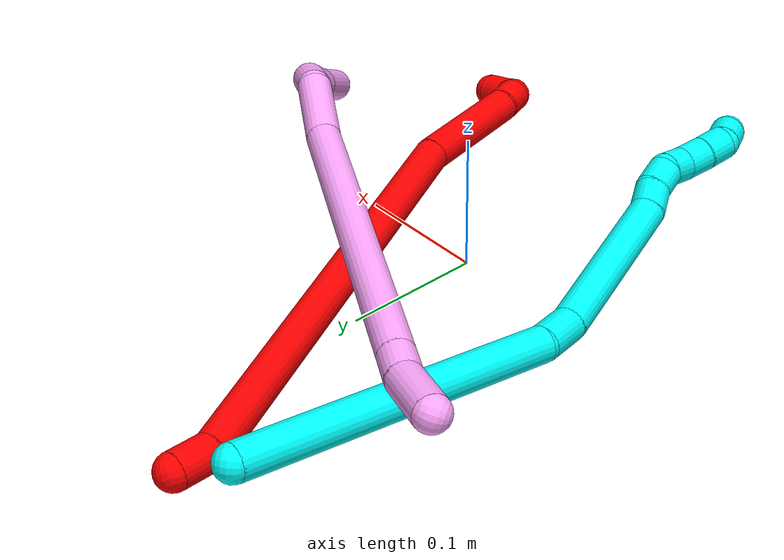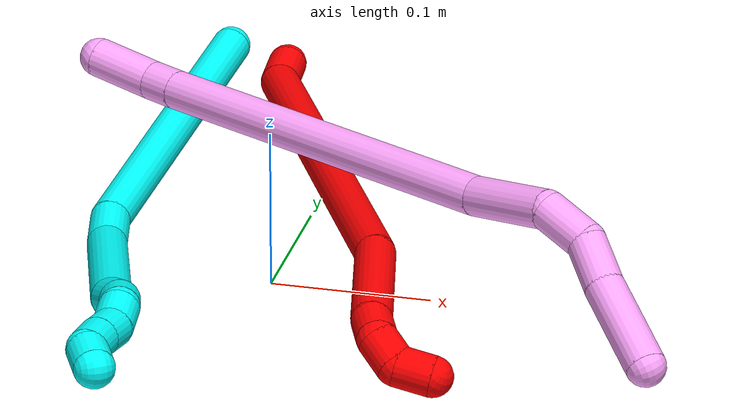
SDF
<sdf version="1.7">
 <world name="default">
  <model name="photoneo_s_sensor">
   <static>1</static>
   <pose>0 0 2 1.57079 1.57079 3.14159</pose>
   <link name="link">
    <inertial><mass>0.1</mass></inertial>
    <sensor name="sensor" type="depth">
     <update_rate>30</update_rate>
     <camera>
      <horizontal_fov>1.22</horizontal_fov>
      <image><width>1920</width><height>1200</height><format>B8G8R8</format></image>
      <clip><near>0.1</near><far>4</far></clip>
      <depth_camera><output>points</output></depth_camera>
     </camera>
     <plugin name="camera_plugin" filename="libgazebo_ros_depth_camera.so">
      <baseline>0.2</baseline>
      <alwaysOn>1</alwaysOn>
      <updateRate>0.0</updateRate>
      <cameraName>camera_ir</cameraName>
      <imageTopicName>/camera/color/image_raw</imageTopicName>
      <cameraInfoTopicName>/camera/color/camera_info</cameraInfoTopicName>
      <depthImageTopicName>/camera/depth/image_raw</depthImageTopicName>
      <depthImageCameraInfoTopicName>/camera/depth/camera_info</depthImageCameraInfoTopicName>
      <pointCloudTopicName>/camera/depth/points</pointCloudTopicName>
      <frameName>fr_optical</frameName>
      <pointCloudCutoff>0.1</pointCloudCutoff>
      <pointCloudCutoffMax>2.0</pointCloudCutoffMax>
      <distortionK1>0</distortionK1>
      <distortionK2>0</distortionK2>
      <distortionK3>0</distortionK3>
      <distortionT1>0</distortionT1>
      <distortionT2>0</distortionT2>
      <CxPrime>0</CxPrime>
      <Cx>0</Cx>
      <Cy>0</Cy>
      <focalLength>0</focalLength>
      <hackBaseline>0</hackBaseline>
     </plugin>
    </sensor>
   </link>
  </model>
  <model name="bin">
   <static>1</static>
   <link name="bottom">
    <collision name="collision-bottom">
     <pose>0 0 -0.01 0 -0 0</pose>
     <geometry><box><size>0.8 0.6 0.02</size></box></geometry>
     <surface>
      <friction><ode><mu>100</mu><mu2>100</mu2></ode></friction>
      <contact><collide_bitmask>65535</collide_bitmask></contact>
     </surface>
    </collision>
   </link>
   <link name="west_wall">
    <collision name="collision-west_wall">
     <pose>-0.41 0 0.1 0 -0 0</pose>
     <geometry><box><size>0.02 0.6 0.2</size></box></geometry>
     <surface>
      <friction><ode><mu>100</mu><mu2>100</mu2></ode></friction>
      <contact><collide_bitmask>65535</collide_bitmask></contact>
     </surface>
    </collision>
   </link>
   <link name="east_wall">
    <collision name="collision-east_wall">
     <pose>0.41 0 0.1 0 -0 0</pose>
     <geometry><box><size>0.02 0.6 0.2</size></box></geometry>
     <surface>
      <friction><ode><mu>100</mu><mu2>100</mu2></ode></friction>
      <contact><collide_bitmask>65535</collide_bitmask></contact>
     </surface>
    </collision>
   </link>
   <link name="south_wall">
    <collision name="collision-south_wall">
     <pose>0 -0.31 0.1 0 -0 0</pose>
     <geometry><box><size>0.8 0.02 0.2</size></box></geometry>
     <surface>
      <friction><ode><mu>100</mu><mu2>100</mu2></ode></friction>
      <contact><collide_bitmask>65535</collide_bitmask></contact>
     </surface>
    </collision>
   </link>
   <link name="north_wall">
    <collision name="collision-north_wall">
     <pose>0 0.31 0.1 0 -0 0</pose>
     <geometry><box><size>0.8 0.02 0.2</size></box></geometry>
     <surface>
      <friction><ode><mu>100</mu><mu2>100</mu2></ode></friction>
      <contact><collide_bitmask>65535</collide_bitmask></contact>
     </surface>
    </collision>
   </link>
  </model>
  <model name="2">
   <static>0</static>
   <link name="2">
    <collision name="collision-cylinder-e_1_1_4">
     <pose>0.006431 -0.011737 -0.002852 1.8092 0.489246 0.614965</pose>
     <geometry><cylinder><radius>0.0125</radius><length>0.027367</length></cylinder></geometry>
     <surface>
      <friction><ode><mu>1.16</mu><mu2>1.16</mu2><slip1>0</slip1><slip2>0</slip2></ode></friction>
      <contact><ode><kp>1e+06</kp><kd>1</kd><max_vel>0</max_vel><min_depth>0.001</min_depth></ode></contact>
     </surface>
    </collision>
    <visual name="visual-cylinder-e_1_1_4">
     <pose>0.006431 -0.011737 -0.002852 1.8092 0.489246 0.614965</pose>
     <geometry><cylinder><radius>0.0125</radius><length>0.027367</length></cylinder></geometry>
     <material><ambient>1 0 0 1</ambient></material>
    </visual>
    <collision name="collision-cylinder-e_2_4_5">
     <pose>0.050204 -0.154172 -0.0881 2.13328 0.237149 0.425338</pose>
     <geometry><cylinder><radius>0.0125</radius><length>0.317903</length></cylinder></geometry>
     <surface>
      <friction><ode><mu>1.16</mu><mu2>1.16</mu2><slip1>0</slip1><slip2>0</slip2></ode></friction>
      <contact><ode><kp>1e+06</kp><kd>1</kd><max_vel>0</max_vel><min_depth>0.001</min_depth></ode></contact>
     </surface>
    </collision>
    <visual name="visual-cylinder-e_2_4_5">
     <pose>0.050204 -0.154172 -0.0881 2.13328 0.237149 0.425338</pose>
     <geometry><cylinder><radius>0.0125</radius><length>0.317903</length></cylinder></geometry>
     <material><ambient>1 0 0 1</ambient></material>
    </visual>
    <collision name="collision-cylinder-e_3_5_6">
     <pose>0.104975 -0.323395 -0.1859 1.9512 0.397669 0.578477</pose>
     <geometry><cylinder><radius>0.0125</radius><length>0.090004</length></cylinder></geometry>
     <surface>
      <friction><ode><mu>1.16</mu><mu2>1.16</mu2><slip1>0</slip1><slip2>0</slip2></ode></friction>
      <contact><ode><kp>1e+06</kp><kd>1</kd><max_vel>0</max_vel><min_depth>0.001</min_depth></ode></contact>
     </surface>
    </collision>
    <visual name="visual-cylinder-e_3_5_6">
     <pose>0.104975 -0.323395 -0.1859 1.9512 0.397669 0.578477</pose>
     <geometry><cylinder><radius>0.0125</radius><length>0.090004</length></cylinder></geometry>
     <material><ambient>1 0 0 1</ambient></material>
    </visual>
    <collision name="collision-cylinder-e_4_6_7">
     <pose>0.124622 -0.371669 -0.205431 1.97112 0.206615 0.310385</pose>
     <geometry><cylinder><radius>0.0125</radius><length>0.021633</length></cylinder></geometry>
     <surface>
      <friction><ode><mu>1.16</mu><mu2>1.16</mu2><slip1>0</slip1><slip2>0</slip2></ode></friction>
      <contact><ode><kp>1e+06</kp><kd>1</kd><max_vel>0</max_vel><min_depth>0.001</min_depth></ode></contact>
     </surface>
    </collision>
    <visual name="visual-cylinder-e_4_6_7">
     <pose>0.124622 -0.371669 -0.205431 1.97112 0.206615 0.310385</pose>
     <geometry><cylinder><radius>0.0125</radius><length>0.021633</length></cylinder></geometry>
     <material><ambient>1 0 0 1</ambient></material>
    </visual>
    <collision name="collision-cylinder-e_5_7_8">
     <pose>0.122685 -0.390793 -0.211556 1.78101 -0.409078 -0.501929</pose>
     <geometry><cylinder><radius>0.0125</radius><length>0.020895</length></cylinder></geometry>
     <surface>
      <friction><ode><mu>1.16</mu><mu2>1.16</mu2><slip1>0</slip1><slip2>0</slip2></ode></friction>
      <contact><ode><kp>1e+06</kp><kd>1</kd><max_vel>0</max_vel><min_depth>0.001</min_depth></ode></contact>
     </surface>
    </collision>
    <visual name="visual-cylinder-e_5_7_8">
     <pose>0.122685 -0.390793 -0.211556 1.78101 -0.409078 -0.501929</pose>
     <geometry><cylinder><radius>0.0125</radius><length>0.020895</length></cylinder></geometry>
     <material><ambient>1 0 0 1</ambient></material>
    </visual>
    <collision name="collision-cylinder-e_6_8_2">
     <pose>0.109726 -0.404436 -0.218797 2.45806 -0.916044 -1.89149</pose>
     <geometry><cylinder><radius>0.0125</radius><length>0.022198</length></cylinder></geometry>
     <surface>
      <friction><ode><mu>1.16</mu><mu2>1.16</mu2><slip1>0</slip1><slip2>0</slip2></ode></friction>
      <contact><ode><kp>1e+06</kp><kd>1</kd><max_vel>0</max_vel><min_depth>0.001</min_depth></ode></contact>
     </surface>
    </collision>
    <visual name="visual-cylinder-e_6_8_2">
     <pose>0.109726 -0.404436 -0.218797 2.45806 -0.916044 -1.89149</pose>
     <geometry><cylinder><radius>0.0125</radius><length>0.022198</length></cylinder></geometry>
     <material><ambient>1 0 0 1</ambient></material>
    </visual>
    <collision name="collision-sphere-2">
     <pose>0.100922 -0.408704 -0.224038 0 -0 0</pose>
     <geometry><sphere><radius>0.0125</radius></sphere></geometry>
     <surface>
      <friction><ode><mu>1.16</mu><mu2>1.16</mu2><slip1>0</slip1><slip2>0</slip2></ode></friction>
      <contact><ode><kp>1e+06</kp><kd>1</kd><max_vel>0</max_vel><min_depth>0.001</min_depth></ode></contact>
     </surface>
    </collision>
    <visual name="visual-sphere-2">
     <pose>0.100922 -0.408704 -0.224038 0 -0 0</pose>
     <geometry><sphere><radius>0.0125</radius></sphere></geometry>
     <material><ambient>1 0 0 1</ambient></material>
    </visual>
    <collision name="collision-sphere-4">
     <pose>0.012861 -0.023473 -0.005705 0 -0 0</pose>
     <geometry><sphere><radius>0.0125</radius></sphere></geometry>
     <surface>
      <friction><ode><mu>1.16</mu><mu2>1.16</mu2><slip1>0</slip1><slip2>0</slip2></ode></friction>
      <contact><ode><kp>1e+06</kp><kd>1</kd><max_vel>0</max_vel><min_depth>0.001</min_depth></ode></contact>
     </surface>
    </collision>
    <visual name="visual-sphere-4">
     <pose>0.012861 -0.023473 -0.005705 0 -0 0</pose>
     <geometry><sphere><radius>0.0125</radius></sphere></geometry>
     <material><ambient>1 0 0 1</ambient></material>
    </visual>
    <collision name="collision-sphere-1">
     <geometry><sphere><radius>0.0125</radius></sphere></geometry>
     <surface>
      <friction><ode><mu>1.16</mu><mu2>1.16</mu2><slip1>0</slip1><slip2>0</slip2></ode></friction>
      <contact><ode><kp>1e+06</kp><kd>1</kd><max_vel>0</max_vel><min_depth>0.001</min_depth></ode></contact>
     </surface>
    </collision>
    <visual name="visual-sphere-1">
     <geometry><sphere><radius>0.0125</radius></sphere></geometry>
     <material><ambient>1 0 0 1</ambient></material>
    </visual>
    <collision name="collision-sphere-8">
     <pose>0.11853 -0.400167 -0.213557 0 -0 0</pose>
     <geometry><sphere><radius>0.0125</radius></sphere></geometry>
     <surface>
      <friction><ode><mu>1.16</mu><mu2>1.16</mu2><slip1>0</slip1><slip2>0</slip2></ode></friction>
      <contact><ode><kp>1e+06</kp><kd>1</kd><max_vel>0</max_vel><min_depth>0.001</min_depth></ode></contact>
     </surface>
    </collision>
    <visual name="visual-sphere-8">
     <pose>0.11853 -0.400167 -0.213557 0 -0 0</pose>
     <geometry><sphere><radius>0.0125</radius></sphere></geometry>
     <material><ambient>1 0 0 1</ambient></material>
    </visual>
    <collision name="collision-sphere-5">
     <pose>0.087547 -0.284871 -0.170495 0 -0 0</pose>
     <geometry><sphere><radius>0.0125</radius></sphere></geometry>
     <surface>
      <friction><ode><mu>1.16</mu><mu2>1.16</mu2><slip1>0</slip1><slip2>0</slip2></ode></friction>
      <contact><ode><kp>1e+06</kp><kd>1</kd><max_vel>0</max_vel><min_depth>0.001</min_depth></ode></contact>
     </surface>
    </collision>
    <visual name="visual-sphere-5">
     <pose>0.087547 -0.284871 -0.170495 0 -0 0</pose>
     <geometry><sphere><radius>0.0125</radius></sphere></geometry>
     <material><ambient>1 0 0 1</ambient></material>
    </visual>
    <collision name="collision-sphere-6">
     <pose>0.122403 -0.36192 -0.201305 0 -0 0</pose>
     <geometry><sphere><radius>0.0125</radius></sphere></geometry>
     <surface>
      <friction><ode><mu>1.16</mu><mu2>1.16</mu2><slip1>0</slip1><slip2>0</slip2></ode></friction>
      <contact><ode><kp>1e+06</kp><kd>1</kd><max_vel>0</max_vel><min_depth>0.001</min_depth></ode></contact>
     </surface>
    </collision>
    <visual name="visual-sphere-6">
     <pose>0.122403 -0.36192 -0.201305 0 -0 0</pose>
     <geometry><sphere><radius>0.0125</radius></sphere></geometry>
     <material><ambient>1 0 0 1</ambient></material>
    </visual>
    <collision name="collision-sphere-7">
     <pose>0.126841 -0.381418 -0.209556 0 -0 0</pose>
     <geometry><sphere><radius>0.0125</radius></sphere></geometry>
     <surface>
      <friction><ode><mu>1.16</mu><mu2>1.16</mu2><slip1>0</slip1><slip2>0</slip2></ode></friction>
      <contact><ode><kp>1e+06</kp><kd>1</kd><max_vel>0</max_vel><min_depth>0.001</min_depth></ode></contact>
     </surface>
    </collision>
    <visual name="visual-sphere-7">
     <pose>0.126841 -0.381418 -0.209556 0 -0 0</pose>
     <geometry><sphere><radius>0.0125</radius></sphere></geometry>
     <material><ambient>1 0 0 1</ambient></material>
    </visual>
    <inertial>
     <pose>0.066559 -0.207247 -0.117077 0 -0 0</pose>
     <mass>0.5</mass>
     <inertia>
      <ixx>0.003555</ixx>
      <ixy>0</ixy>
      <ixz>0</ixz>
      <iyy>-1.3e-05</iyy>
      <iyz>0</iyz>
      <izz>0.001599</izz>
     </inertia>
    </inertial>
   </link>
   <pose>-0.06228 0.282837 0.020864 2.54214 -0.476847 -2.47833</pose>
  </model>
  <model name="3">
   <static>0</static>
   <link name="3">
    <collision name="collision-cylinder-e_1_1_4">
     <pose>0.026574 -0.08248 -0.074107 2.30277 0.235225 0.518108</pose>
     <geometry><cylinder><radius>0.0125</radius><length>0.228045</length></cylinder></geometry>
     <surface>
      <friction><ode><mu>1.16</mu><mu2>1.16</mu2><slip1>0</slip1><slip2>0</slip2></ode></friction>
      <contact><ode><kp>1e+06</kp><kd>1</kd><max_vel>0</max_vel><min_depth>0.001</min_depth></ode></contact>
     </surface>
    </collision>
    <visual name="visual-cylinder-e_1_1_4">
     <pose>0.026574 -0.08248 -0.074107 2.30277 0.235225 0.518108</pose>
     <geometry><cylinder><radius>0.0125</radius><length>0.228045</length></cylinder></geometry>
     <material><ambient>0.003922 1 0.996078 1</ambient></material>
    </visual>
    <collision name="collision-cylinder-e_2_4_5">
     <pose>0.056954 -0.178649 -0.154583 2.00621 0.246947 0.384413</pose>
     <geometry><cylinder><radius>0.0125</radius><length>0.031138</length></cylinder></geometry>
     <surface>
      <friction><ode><mu>1.16</mu><mu2>1.16</mu2><slip1>0</slip1><slip2>0</slip2></ode></friction>
      <contact><ode><kp>1e+06</kp><kd>1</kd><max_vel>0</max_vel><min_depth>0.001</min_depth></ode></contact>
     </surface>
    </collision>
    <visual name="visual-cylinder-e_2_4_5">
     <pose>0.056954 -0.178649 -0.154583 2.00621 0.246947 0.384413</pose>
     <geometry><cylinder><radius>0.0125</radius><length>0.031138</length></cylinder></geometry>
     <material><ambient>0.003922 1 0.996078 1</ambient></material>
    </visual>
    <collision name="collision-cylinder-e_3_5_6">
     <pose>0.059302 -0.249378 -0.18064 1.90318 -0.024155 -0.03389</pose>
     <geometry><cylinder><radius>0.0125</radius><length>0.120723</length></cylinder></geometry>
     <surface>
      <friction><ode><mu>1.16</mu><mu2>1.16</mu2><slip1>0</slip1><slip2>0</slip2></ode></friction>
      <contact><ode><kp>1e+06</kp><kd>1</kd><max_vel>0</max_vel><min_depth>0.001</min_depth></ode></contact>
     </surface>
    </collision>
    <visual name="visual-cylinder-e_3_5_6">
     <pose>0.059302 -0.249378 -0.18064 1.90318 -0.024155 -0.03389</pose>
     <geometry><cylinder><radius>0.0125</radius><length>0.120723</length></cylinder></geometry>
     <material><ambient>0.003922 1 0.996078 1</ambient></material>
    </visual>
    <collision name="collision-cylinder-e_4_6_7">
     <pose>0.05579 -0.316175 -0.201187 1.65838 -0.206774 -0.225572</pose>
     <geometry><cylinder><radius>0.0125</radius><length>0.020012</length></cylinder></geometry>
     <surface>
      <friction><ode><mu>1.16</mu><mu2>1.16</mu2><slip1>0</slip1><slip2>0</slip2></ode></friction>
      <contact><ode><kp>1e+06</kp><kd>1</kd><max_vel>0</max_vel><min_depth>0.001</min_depth></ode></contact>
     </surface>
    </collision>
    <visual name="visual-cylinder-e_4_6_7">
     <pose>0.05579 -0.316175 -0.201187 1.65838 -0.206774 -0.225572</pose>
     <geometry><cylinder><radius>0.0125</radius><length>0.020012</length></cylinder></geometry>
     <material><ambient>0.003922 1 0.996078 1</ambient></material>
    </visual>
    <collision name="collision-cylinder-e_5_7_8">
     <pose>0.052641 -0.33525 -0.205594 1.93477 -0.109328 -0.158466</pose>
     <geometry><cylinder><radius>0.0125</radius><length>0.020065</length></cylinder></geometry>
     <surface>
      <friction><ode><mu>1.16</mu><mu2>1.16</mu2><slip1>0</slip1><slip2>0</slip2></ode></friction>
      <contact><ode><kp>1e+06</kp><kd>1</kd><max_vel>0</max_vel><min_depth>0.001</min_depth></ode></contact>
     </surface>
    </collision>
    <visual name="visual-cylinder-e_5_7_8">
     <pose>0.052641 -0.33525 -0.205594 1.93477 -0.109328 -0.158466</pose>
     <geometry><cylinder><radius>0.0125</radius><length>0.020065</length></cylinder></geometry>
     <material><ambient>0.003922 1 0.996078 1</ambient></material>
    </visual>
    <collision name="collision-cylinder-e_6_8_9">
     <pose>0.054701 -0.352488 -0.214386 2.15553 0.320679 0.584763</pose>
     <geometry><cylinder><radius>0.0125</radius><length>0.020012</length></cylinder></geometry>
     <surface>
      <friction><ode><mu>1.16</mu><mu2>1.16</mu2><slip1>0</slip1><slip2>0</slip2></ode></friction>
      <contact><ode><kp>1e+06</kp><kd>1</kd><max_vel>0</max_vel><min_depth>0.001</min_depth></ode></contact>
     </surface>
    </collision>
    <visual name="visual-cylinder-e_6_8_9">
     <pose>0.054701 -0.352488 -0.214386 2.15553 0.320679 0.584763</pose>
     <geometry><cylinder><radius>0.0125</radius><length>0.020012</length></cylinder></geometry>
     <material><ambient>0.003922 1 0.996078 1</ambient></material>
    </visual>
    <collision name="collision-cylinder-e_7_9_10">
     <pose>0.057927 -0.367545 -0.22663 2.34657 0.007277 0.017332</pose>
     <geometry><cylinder><radius>0.0125</radius><length>0.020002</length></cylinder></geometry>
     <surface>
      <friction><ode><mu>1.16</mu><mu2>1.16</mu2><slip1>0</slip1><slip2>0</slip2></ode></friction>
      <contact><ode><kp>1e+06</kp><kd>1</kd><max_vel>0</max_vel><min_depth>0.001</min_depth></ode></contact>
     </surface>
    </collision>
    <visual name="visual-cylinder-e_7_9_10">
     <pose>0.057927 -0.367545 -0.22663 2.34657 0.007277 0.017332</pose>
     <geometry><cylinder><radius>0.0125</radius><length>0.020002</length></cylinder></geometry>
     <material><ambient>0.003922 1 0.996078 1</ambient></material>
    </visual>
    <collision name="collision-cylinder-e_8_10_11">
     <pose>0.058417 -0.382371 -0.240017 2.26389 0.041642 0.088671</pose>
     <geometry><cylinder><radius>0.0125</radius><length>0.020001</length></cylinder></geometry>
     <surface>
      <friction><ode><mu>1.16</mu><mu2>1.16</mu2><slip1>0</slip1><slip2>0</slip2></ode></friction>
      <contact><ode><kp>1e+06</kp><kd>1</kd><max_vel>0</max_vel><min_depth>0.001</min_depth></ode></contact>
     </surface>
    </collision>
    <visual name="visual-cylinder-e_8_10_11">
     <pose>0.058417 -0.382371 -0.240017 2.26389 0.041642 0.088671</pose>
     <geometry><cylinder><radius>0.0125</radius><length>0.020001</length></cylinder></geometry>
     <material><ambient>0.003922 1 0.996078 1</ambient></material>
    </visual>
    <collision name="collision-cylinder-e_9_11_2">
     <pose>0.061499 -0.399589 -0.247837 1.72026 0.269821 0.312834</pose>
     <geometry><cylinder><radius>0.0125</radius><length>0.020001</length></cylinder></geometry>
     <surface>
      <friction><ode><mu>1.16</mu><mu2>1.16</mu2><slip1>0</slip1><slip2>0</slip2></ode></friction>
      <contact><ode><kp>1e+06</kp><kd>1</kd><max_vel>0</max_vel><min_depth>0.001</min_depth></ode></contact>
     </surface>
    </collision>
    <visual name="visual-cylinder-e_9_11_2">
     <pose>0.061499 -0.399589 -0.247837 1.72026 0.269821 0.312834</pose>
     <geometry><cylinder><radius>0.0125</radius><length>0.020001</length></cylinder></geometry>
     <material><ambient>0.003922 1 0.996078 1</ambient></material>
    </visual>
    <collision name="collision-sphere-2">
     <pose>0.064164 -0.40912 -0.249272 0 -0 0</pose>
     <geometry><sphere><radius>0.0125</radius></sphere></geometry>
     <surface>
      <friction><ode><mu>1.16</mu><mu2>1.16</mu2><slip1>0</slip1><slip2>0</slip2></ode></friction>
      <contact><ode><kp>1e+06</kp><kd>1</kd><max_vel>0</max_vel><min_depth>0.001</min_depth></ode></contact>
     </surface>
    </collision>
    <visual name="visual-sphere-2">
     <pose>0.064164 -0.40912 -0.249272 0 -0 0</pose>
     <geometry><sphere><radius>0.0125</radius></sphere></geometry>
     <material><ambient>0.003922 1 0.996078 1</ambient></material>
    </visual>
    <collision name="collision-sphere-11">
     <pose>0.058833 -0.390057 -0.246401 0 -0 0</pose>
     <geometry><sphere><radius>0.0125</radius></sphere></geometry>
     <surface>
      <friction><ode><mu>1.16</mu><mu2>1.16</mu2><slip1>0</slip1><slip2>0</slip2></ode></friction>
      <contact><ode><kp>1e+06</kp><kd>1</kd><max_vel>0</max_vel><min_depth>0.001</min_depth></ode></contact>
     </surface>
    </collision>
    <visual name="visual-sphere-11">
     <pose>0.058833 -0.390057 -0.246401 0 -0 0</pose>
     <geometry><sphere><radius>0.0125</radius></sphere></geometry>
     <material><ambient>0.003922 1 0.996078 1</ambient></material>
    </visual>
    <collision name="collision-sphere-10">
     <pose>0.058 -0.374685 -0.233633 0 -0 0</pose>
     <geometry><sphere><radius>0.0125</radius></sphere></geometry>
     <surface>
      <friction><ode><mu>1.16</mu><mu2>1.16</mu2><slip1>0</slip1><slip2>0</slip2></ode></friction>
      <contact><ode><kp>1e+06</kp><kd>1</kd><max_vel>0</max_vel><min_depth>0.001</min_depth></ode></contact>
     </surface>
    </collision>
    <visual name="visual-sphere-10">
     <pose>0.058 -0.374685 -0.233633 0 -0 0</pose>
     <geometry><sphere><radius>0.0125</radius></sphere></geometry>
     <material><ambient>0.003922 1 0.996078 1</ambient></material>
    </visual>
    <collision name="collision-sphere-9">
     <pose>0.057855 -0.360406 -0.219627 0 -0 0</pose>
     <geometry><sphere><radius>0.0125</radius></sphere></geometry>
     <surface>
      <friction><ode><mu>1.16</mu><mu2>1.16</mu2><slip1>0</slip1><slip2>0</slip2></ode></friction>
      <contact><ode><kp>1e+06</kp><kd>1</kd><max_vel>0</max_vel><min_depth>0.001</min_depth></ode></contact>
     </surface>
    </collision>
    <visual name="visual-sphere-9">
     <pose>0.057855 -0.360406 -0.219627 0 -0 0</pose>
     <geometry><sphere><radius>0.0125</radius></sphere></geometry>
     <material><ambient>0.003922 1 0.996078 1</ambient></material>
    </visual>
    <collision name="collision-sphere-4">
     <pose>0.053149 -0.164961 -0.148215 0 -0 0</pose>
     <geometry><sphere><radius>0.0125</radius></sphere></geometry>
     <surface>
      <friction><ode><mu>1.16</mu><mu2>1.16</mu2><slip1>0</slip1><slip2>0</slip2></ode></friction>
      <contact><ode><kp>1e+06</kp><kd>1</kd><max_vel>0</max_vel><min_depth>0.001</min_depth></ode></contact>
     </surface>
    </collision>
    <visual name="visual-sphere-4">
     <pose>0.053149 -0.164961 -0.148215 0 -0 0</pose>
     <geometry><sphere><radius>0.0125</radius></sphere></geometry>
     <material><ambient>0.003922 1 0.996078 1</ambient></material>
    </visual>
    <collision name="collision-sphere-1">
     <geometry><sphere><radius>0.0125</radius></sphere></geometry>
     <surface>
      <friction><ode><mu>1.16</mu><mu2>1.16</mu2><slip1>0</slip1><slip2>0</slip2></ode></friction>
      <contact><ode><kp>1e+06</kp><kd>1</kd><max_vel>0</max_vel><min_depth>0.001</min_depth></ode></contact>
     </surface>
    </collision>
    <visual name="visual-sphere-1">
     <geometry><sphere><radius>0.0125</radius></sphere></geometry>
     <material><ambient>0.003922 1 0.996078 1</ambient></material>
    </visual>
    <collision name="collision-sphere-8">
     <pose>0.051547 -0.344569 -0.209144 0 -0 0</pose>
     <geometry><sphere><radius>0.0125</radius></sphere></geometry>
     <surface>
      <friction><ode><mu>1.16</mu><mu2>1.16</mu2><slip1>0</slip1><slip2>0</slip2></ode></friction>
      <contact><ode><kp>1e+06</kp><kd>1</kd><max_vel>0</max_vel><min_depth>0.001</min_depth></ode></contact>
     </surface>
    </collision>
    <visual name="visual-sphere-8">
     <pose>0.051547 -0.344569 -0.209144 0 -0 0</pose>
     <geometry><sphere><radius>0.0125</radius></sphere></geometry>
     <material><ambient>0.003922 1 0.996078 1</ambient></material>
    </visual>
    <collision name="collision-sphere-5">
     <pose>0.06076 -0.192337 -0.16095 0 -0 0</pose>
     <geometry><sphere><radius>0.0125</radius></sphere></geometry>
     <surface>
      <friction><ode><mu>1.16</mu><mu2>1.16</mu2><slip1>0</slip1><slip2>0</slip2></ode></friction>
      <contact><ode><kp>1e+06</kp><kd>1</kd><max_vel>0</max_vel><min_depth>0.001</min_depth></ode></contact>
     </surface>
    </collision>
    <visual name="visual-sphere-5">
     <pose>0.06076 -0.192337 -0.16095 0 -0 0</pose>
     <geometry><sphere><radius>0.0125</radius></sphere></geometry>
     <material><ambient>0.003922 1 0.996078 1</ambient></material>
    </visual>
    <collision name="collision-sphere-6">
     <pose>0.057844 -0.306419 -0.20033 0 -0 0</pose>
     <geometry><sphere><radius>0.0125</radius></sphere></geometry>
     <surface>
      <friction><ode><mu>1.16</mu><mu2>1.16</mu2><slip1>0</slip1><slip2>0</slip2></ode></friction>
      <contact><ode><kp>1e+06</kp><kd>1</kd><max_vel>0</max_vel><min_depth>0.001</min_depth></ode></contact>
     </surface>
    </collision>
    <visual name="visual-sphere-6">
     <pose>0.057844 -0.306419 -0.20033 0 -0 0</pose>
     <geometry><sphere><radius>0.0125</radius></sphere></geometry>
     <material><ambient>0.003922 1 0.996078 1</ambient></material>
    </visual>
    <collision name="collision-sphere-7">
     <pose>0.053736 -0.32593 -0.202043 0 -0 0</pose>
     <geometry><sphere><radius>0.0125</radius></sphere></geometry>
     <surface>
      <friction><ode><mu>1.16</mu><mu2>1.16</mu2><slip1>0</slip1><slip2>0</slip2></ode></friction>
      <contact><ode><kp>1e+06</kp><kd>1</kd><max_vel>0</max_vel><min_depth>0.001</min_depth></ode></contact>
     </surface>
    </collision>
    <visual name="visual-sphere-7">
     <pose>0.053736 -0.32593 -0.202043 0 -0 0</pose>
     <geometry><sphere><radius>0.0125</radius></sphere></geometry>
     <material><ambient>0.003922 1 0.996078 1</ambient></material>
    </visual>
    <inertial>
     <pose>0.043635 -0.195155 -0.140506 0 -0 0</pose>
     <mass>0.5</mass>
     <inertia>
      <ixx>0.001487</ixx>
      <ixy>0</ixy>
      <ixz>0</ixz>
      <iyy>-0.000101</iyy>
      <iyz>0</iyz>
      <izz>0.000625</izz>
     </inertia>
    </inertial>
   </link>
   <pose>-0.095306 0.263286 0.038386 -1.74441 1.41759 -1.10339</pose>
  </model>
  <model name="4">
   <static>0</static>
   <link name="4">
    <collision name="collision-cylinder-e_1_1_4">
     <pose>0.017193 -0.006236 -0.010075 2.58736 0.967384 2.14907</pose>
     <geometry><cylinder><radius>0.0125</radius><length>0.04176</length></cylinder></geometry>
     <surface>
      <friction><ode><mu>1.16</mu><mu2>1.16</mu2><slip1>0</slip1><slip2>0</slip2></ode></friction>
      <contact><ode><kp>1e+06</kp><kd>1</kd><max_vel>0</max_vel><min_depth>0.001</min_depth></ode></contact>
     </surface>
    </collision>
    <visual name="visual-cylinder-e_1_1_4">
     <pose>0.017193 -0.006236 -0.010075 2.58736 0.967384 2.14907</pose>
     <geometry><cylinder><radius>0.0125</radius><length>0.04176</length></cylinder></geometry>
     <material><ambient>1 0.65098 0.996078 1</ambient></material>
    </visual>
    <collision name="collision-cylinder-e_2_4_5">
     <pose>0.044577 -0.01374 -0.024411 2.85217 1.15938 2.70357</pose>
     <geometry><cylinder><radius>0.0125</radius><length>0.022239</length></cylinder></geometry>
     <surface>
      <friction><ode><mu>1.16</mu><mu2>1.16</mu2><slip1>0</slip1><slip2>0</slip2></ode></friction>
      <contact><ode><kp>1e+06</kp><kd>1</kd><max_vel>0</max_vel><min_depth>0.001</min_depth></ode></contact>
     </surface>
    </collision>
    <visual name="visual-cylinder-e_2_4_5">
     <pose>0.044577 -0.01374 -0.024411 2.85217 1.15938 2.70357</pose>
     <geometry><cylinder><radius>0.0125</radius><length>0.022239</length></cylinder></geometry>
     <material><ambient>1 0.65098 0.996078 1</ambient></material>
    </visual>
    <collision name="collision-cylinder-e_3_5_6">
     <pose>0.169139 -0.026912 -0.078645 2.90776 1.14864 2.78248</pose>
     <geometry><cylinder><radius>0.0125</radius><length>0.250754</length></cylinder></geometry>
     <surface>
      <friction><ode><mu>1.16</mu><mu2>1.16</mu2><slip1>0</slip1><slip2>0</slip2></ode></friction>
      <contact><ode><kp>1e+06</kp><kd>1</kd><max_vel>0</max_vel><min_depth>0.001</min_depth></ode></contact>
     </surface>
    </collision>
    <visual name="visual-cylinder-e_3_5_6">
     <pose>0.169139 -0.026912 -0.078645 2.90776 1.14864 2.78248</pose>
     <geometry><cylinder><radius>0.0125</radius><length>0.250754</length></cylinder></geometry>
     <material><ambient>1 0.65098 0.996078 1</ambient></material>
    </visual>
    <collision name="collision-cylinder-e_4_6_7">
     <pose>0.31098 -0.036529 -0.140241 -2.94742 1.16367 -2.84761</pose>
     <geometry><cylinder><radius>0.0125</radius><length>0.059833</length></cylinder></geometry>
     <surface>
      <friction><ode><mu>1.16</mu><mu2>1.16</mu2><slip1>0</slip1><slip2>0</slip2></ode></friction>
      <contact><ode><kp>1e+06</kp><kd>1</kd><max_vel>0</max_vel><min_depth>0.001</min_depth></ode></contact>
     </surface>
    </collision>
    <visual name="visual-cylinder-e_4_6_7">
     <pose>0.31098 -0.036529 -0.140241 -2.94742 1.16367 -2.84761</pose>
     <geometry><cylinder><radius>0.0125</radius><length>0.059833</length></cylinder></geometry>
     <material><ambient>1 0.65098 0.996078 1</ambient></material>
    </visual>
    <collision name="collision-cylinder-e_5_7_8">
     <pose>0.35309 -0.040875 -0.156083 2.13741 1.07803 1.6563</pose>
     <geometry><cylinder><radius>0.0125</radius><length>0.03323</length></cylinder></geometry>
     <surface>
      <friction><ode><mu>1.16</mu><mu2>1.16</mu2><slip1>0</slip1><slip2>0</slip2></ode></friction>
      <contact><ode><kp>1e+06</kp><kd>1</kd><max_vel>0</max_vel><min_depth>0.001</min_depth></ode></contact>
     </surface>
    </collision>
    <visual name="visual-cylinder-e_5_7_8">
     <pose>0.35309 -0.040875 -0.156083 2.13741 1.07803 1.6563</pose>
     <geometry><cylinder><radius>0.0125</radius><length>0.03323</length></cylinder></geometry>
     <material><ambient>1 0.65098 0.996078 1</ambient></material>
    </visual>
    <collision name="collision-cylinder-e_6_8_9">
     <pose>0.380697 -0.056073 -0.157523 1.25709 0.963831 0.726639</pose>
     <geometry><cylinder><radius>0.0125</radius><length>0.031577</length></cylinder></geometry>
     <surface>
      <friction><ode><mu>1.16</mu><mu2>1.16</mu2><slip1>0</slip1><slip2>0</slip2></ode></friction>
      <contact><ode><kp>1e+06</kp><kd>1</kd><max_vel>0</max_vel><min_depth>0.001</min_depth></ode></contact>
     </surface>
    </collision>
    <visual name="visual-cylinder-e_6_8_9">
     <pose>0.380697 -0.056073 -0.157523 1.25709 0.963831 0.726639</pose>
     <geometry><cylinder><radius>0.0125</radius><length>0.031577</length></cylinder></geometry>
     <material><ambient>1 0.65098 0.996078 1</ambient></material>
    </visual>
    <collision name="collision-cylinder-e_7_9_2">
     <pose>0.420318 -0.078664 -0.151392 1.33619 1.07487 0.879212</pose>
     <geometry><cylinder><radius>0.0125</radius><length>0.060606</length></cylinder></geometry>
     <surface>
      <friction><ode><mu>1.16</mu><mu2>1.16</mu2><slip1>0</slip1><slip2>0</slip2></ode></friction>
      <contact><ode><kp>1e+06</kp><kd>1</kd><max_vel>0</max_vel><min_depth>0.001</min_depth></ode></contact>
     </surface>
    </collision>
    <visual name="visual-cylinder-e_7_9_2">
     <pose>0.420318 -0.078664 -0.151392 1.33619 1.07487 0.879212</pose>
     <geometry><cylinder><radius>0.0125</radius><length>0.060606</length></cylinder></geometry>
     <material><ambient>1 0.65098 0.996078 1</ambient></material>
    </visual>
    <collision name="collision-sphere-2">
     <pose>0.44697 -0.092688 -0.14804 0 -0 0</pose>
     <geometry><sphere><radius>0.0125</radius></sphere></geometry>
     <surface>
      <friction><ode><mu>1.16</mu><mu2>1.16</mu2><slip1>0</slip1><slip2>0</slip2></ode></friction>
      <contact><ode><kp>1e+06</kp><kd>1</kd><max_vel>0</max_vel><min_depth>0.001</min_depth></ode></contact>
     </surface>
    </collision>
    <visual name="visual-sphere-2">
     <pose>0.44697 -0.092688 -0.14804 0 -0 0</pose>
     <geometry><sphere><radius>0.0125</radius></sphere></geometry>
     <material><ambient>1 0.65098 0.996078 1</ambient></material>
    </visual>
    <collision name="collision-sphere-9">
     <pose>0.393665 -0.064639 -0.154744 0 -0 0</pose>
     <geometry><sphere><radius>0.0125</radius></sphere></geometry>
     <surface>
      <friction><ode><mu>1.16</mu><mu2>1.16</mu2><slip1>0</slip1><slip2>0</slip2></ode></friction>
      <contact><ode><kp>1e+06</kp><kd>1</kd><max_vel>0</max_vel><min_depth>0.001</min_depth></ode></contact>
     </surface>
    </collision>
    <visual name="visual-sphere-9">
     <pose>0.393665 -0.064639 -0.154744 0 -0 0</pose>
     <geometry><sphere><radius>0.0125</radius></sphere></geometry>
     <material><ambient>1 0.65098 0.996078 1</ambient></material>
    </visual>
    <collision name="collision-sphere-4">
     <pose>0.034385 -0.012471 -0.020149 0 -0 0</pose>
     <geometry><sphere><radius>0.0125</radius></sphere></geometry>
     <surface>
      <friction><ode><mu>1.16</mu><mu2>1.16</mu2><slip1>0</slip1><slip2>0</slip2></ode></friction>
      <contact><ode><kp>1e+06</kp><kd>1</kd><max_vel>0</max_vel><min_depth>0.001</min_depth></ode></contact>
     </surface>
    </collision>
    <visual name="visual-sphere-4">
     <pose>0.034385 -0.012471 -0.020149 0 -0 0</pose>
     <geometry><sphere><radius>0.0125</radius></sphere></geometry>
     <material><ambient>1 0.65098 0.996078 1</ambient></material>
    </visual>
    <collision name="collision-sphere-1">
     <geometry><sphere><radius>0.0125</radius></sphere></geometry>
     <surface>
      <friction><ode><mu>1.16</mu><mu2>1.16</mu2><slip1>0</slip1><slip2>0</slip2></ode></friction>
      <contact><ode><kp>1e+06</kp><kd>1</kd><max_vel>0</max_vel><min_depth>0.001</min_depth></ode></contact>
     </surface>
    </collision>
    <visual name="visual-sphere-1">
     <geometry><sphere><radius>0.0125</radius></sphere></geometry>
     <material><ambient>1 0.65098 0.996078 1</ambient></material>
    </visual>
    <collision name="collision-sphere-8">
     <pose>0.367728 -0.047507 -0.160302 0 -0 0</pose>
     <geometry><sphere><radius>0.0125</radius></sphere></geometry>
     <surface>
      <friction><ode><mu>1.16</mu><mu2>1.16</mu2><slip1>0</slip1><slip2>0</slip2></ode></friction>
      <contact><ode><kp>1e+06</kp><kd>1</kd><max_vel>0</max_vel><min_depth>0.001</min_depth></ode></contact>
     </surface>
    </collision>
    <visual name="visual-sphere-8">
     <pose>0.367728 -0.047507 -0.160302 0 -0 0</pose>
     <geometry><sphere><radius>0.0125</radius></sphere></geometry>
     <material><ambient>1 0.65098 0.996078 1</ambient></material>
    </visual>
    <collision name="collision-sphere-5">
     <pose>0.054769 -0.01501 -0.028673 0 -0 0</pose>
     <geometry><sphere><radius>0.0125</radius></sphere></geometry>
     <surface>
      <friction><ode><mu>1.16</mu><mu2>1.16</mu2><slip1>0</slip1><slip2>0</slip2></ode></friction>
      <contact><ode><kp>1e+06</kp><kd>1</kd><max_vel>0</max_vel><min_depth>0.001</min_depth></ode></contact>
     </surface>
    </collision>
    <visual name="visual-sphere-5">
     <pose>0.054769 -0.01501 -0.028673 0 -0 0</pose>
     <geometry><sphere><radius>0.0125</radius></sphere></geometry>
     <material><ambient>1 0.65098 0.996078 1</ambient></material>
    </visual>
    <collision name="collision-sphere-6">
     <pose>0.283509 -0.038815 -0.128617 0 -0 0</pose>
     <geometry><sphere><radius>0.0125</radius></sphere></geometry>
     <surface>
      <friction><ode><mu>1.16</mu><mu2>1.16</mu2><slip1>0</slip1><slip2>0</slip2></ode></friction>
      <contact><ode><kp>1e+06</kp><kd>1</kd><max_vel>0</max_vel><min_depth>0.001</min_depth></ode></contact>
     </surface>
    </collision>
    <visual name="visual-sphere-6">
     <pose>0.283509 -0.038815 -0.128617 0 -0 0</pose>
     <geometry><sphere><radius>0.0125</radius></sphere></geometry>
     <material><ambient>1 0.65098 0.996078 1</ambient></material>
    </visual>
    <collision name="collision-sphere-7">
     <pose>0.338451 -0.034244 -0.151864 0 -0 0</pose>
     <geometry><sphere><radius>0.0125</radius></sphere></geometry>
     <surface>
      <friction><ode><mu>1.16</mu><mu2>1.16</mu2><slip1>0</slip1><slip2>0</slip2></ode></friction>
      <contact><ode><kp>1e+06</kp><kd>1</kd><max_vel>0</max_vel><min_depth>0.001</min_depth></ode></contact>
     </surface>
    </collision>
    <visual name="visual-sphere-7">
     <pose>0.338451 -0.034244 -0.151864 0 -0 0</pose>
     <geometry><sphere><radius>0.0125</radius></sphere></geometry>
     <material><ambient>1 0.65098 0.996078 1</ambient></material>
    </visual>
    <inertial>
     <pose>0.223914 -0.034793 -0.096823 0 -0 0</pose>
     <mass>0.5</mass>
     <inertia>
      <ixx>-0.000272</ixx>
      <ixy>0</ixy>
      <ixz>0</ixz>
      <iyy>0.001551</iyy>
      <iyz>0</iyz>
      <izz>-0.001131</izz>
     </inertia>
    </inertial>
   </link>
   <pose>-0.157926 0.171063 0.062463 1.86725 0.012369 -0.913143</pose>
  </model>
 </world>
</sdf>
